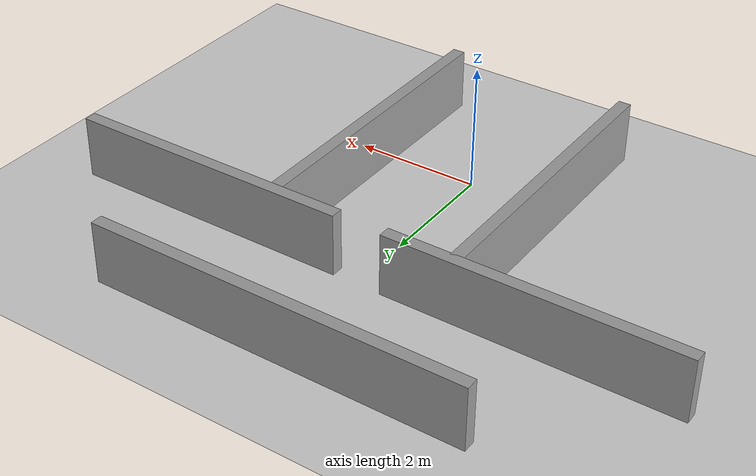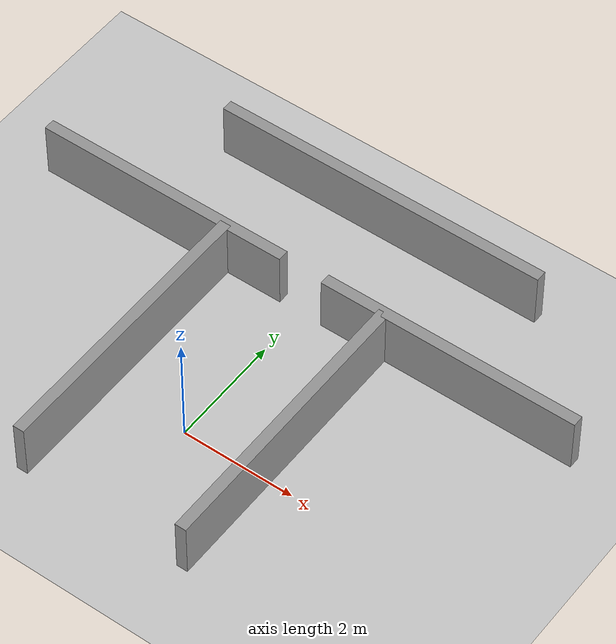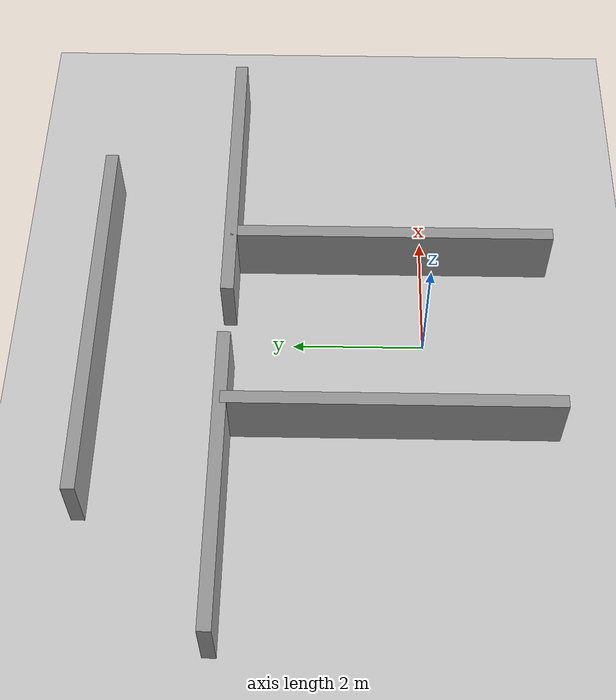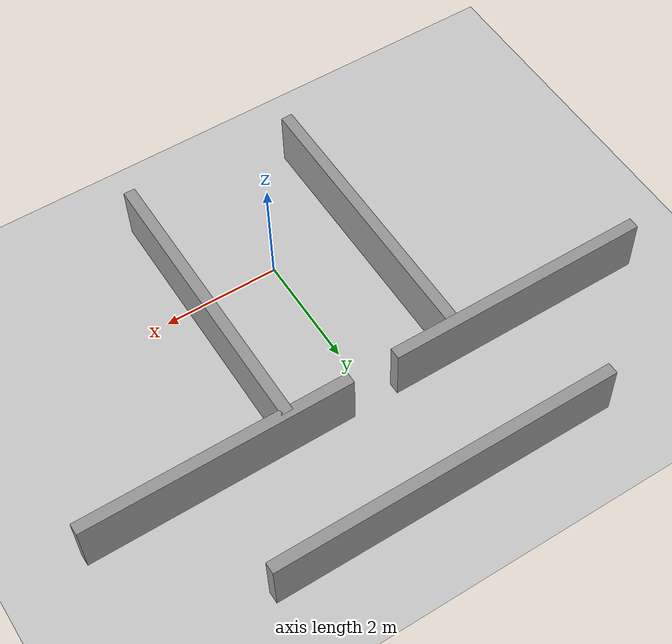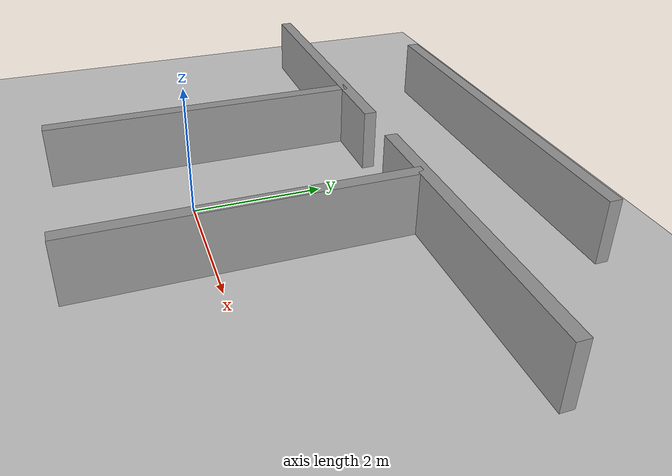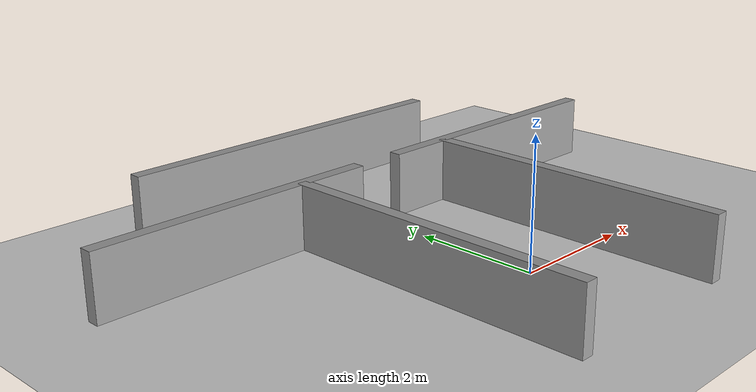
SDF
<?xml version="1.0" ?>
<!-- 0.78 m 门洞 = 车宽 676 mm + 10 cm (窄通道验收口径: 车宽 + 10cm).
     两道墙在 y=3.0 处留 gap x in [-0.40, 0.40].
     车体碰撞体: 0.87 x 0.70, x 偏移 0.119 (见 gt_robot.xacro)
     机器人起点 (0,0) 朝 +y, 目标 (0,3.8). -->
<sdf version="1.6">
  <world name="default">
    <include><uri>model://sun</uri></include>
    <include><uri>model://ground_plane</uri></include>

    <model name="wall_left">
      <static>1</static>
      <pose>-2.695 3.0 0.5 0 0 0</pose>
      <link name="link">
        <collision name="c"><geometry><box><size>4.61 0.2 1.0</size></box></geometry></collision>
        <visual name="v"><geometry><box><size>4.61 0.2 1.0</size></box></geometry>
          <material><script><uri>file://media/materials/scripts/gazebo.material</uri>
            <name>Gazebo/Grey</name></script></material></visual>
      </link>
    </model>

    <model name="wall_right">
      <static>1</static>
      <pose>2.695 3.0 0.5 0 0 0</pose>
      <link name="link">
        <collision name="c"><geometry><box><size>4.61 0.2 1.0</size></box></geometry></collision>
        <visual name="v"><geometry><box><size>4.61 0.2 1.0</size></box></geometry>
          <material><script><uri>file://media/materials/scripts/gazebo.material</uri>
            <name>Gazebo/Grey</name></script></material></visual>
      </link>
    </model>

    <model name="wall_back">
      <static>1</static>
      <pose>0.0 5.0 0.5 0 0 0</pose>
      <link name="link">
        <collision name="c"><geometry><box><size>6.0 0.2 1.0</size></box></geometry></collision>
        <visual name="v"><geometry><box><size>6.0 0.2 1.0</size></box></geometry>
          <material><script><uri>file://media/materials/scripts/gazebo.material</uri>
            <name>Gazebo/Grey</name></script></material></visual>
      </link>
    </model>

    <!-- 起点走廊侧墙: 空世界里几乎没有回波, 地图会全 unknown -> 规划器拒绝起步 -->
    <model name="side_left">
      <static>1</static>
      <pose>-1.5 0.5 0.5 0 0 0</pose>
      <link name="link">
        <collision name="c"><geometry><box><size>0.2 5.0 1.0</size></box></geometry></collision>
        <visual name="v"><geometry><box><size>0.2 5.0 1.0</size></box></geometry>
          <material><script><uri>file://media/materials/scripts/gazebo.material</uri>
            <name>Gazebo/Grey</name></script></material></visual>
      </link>
    </model>
    <model name="side_right">
      <static>1</static>
      <pose>1.5 0.5 0.5 0 0 0</pose>
      <link name="link">
        <collision name="c"><geometry><box><size>0.2 5.0 1.0</size></box></geometry></collision>
        <visual name="v"><geometry><box><size>0.2 5.0 1.0</size></box></geometry>
          <material><script><uri>file://media/materials/scripts/gazebo.material</uri>
            <name>Gazebo/Grey</name></script></material></visual>
      </link>
    </model>

    <physics type="ode">
      <real_time_update_rate>1000</real_time_update_rate>
      <max_step_size>0.001</max_step_size>
    </physics>
  </world>
</sdf>
